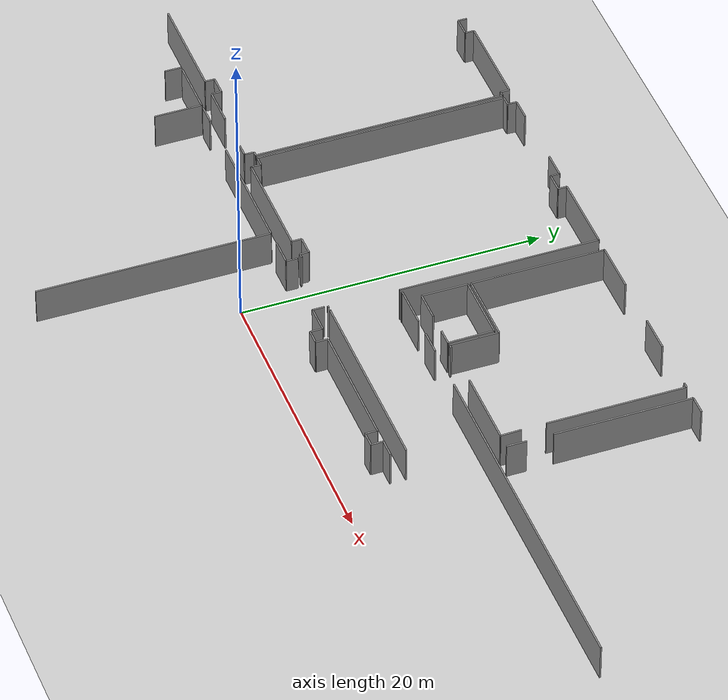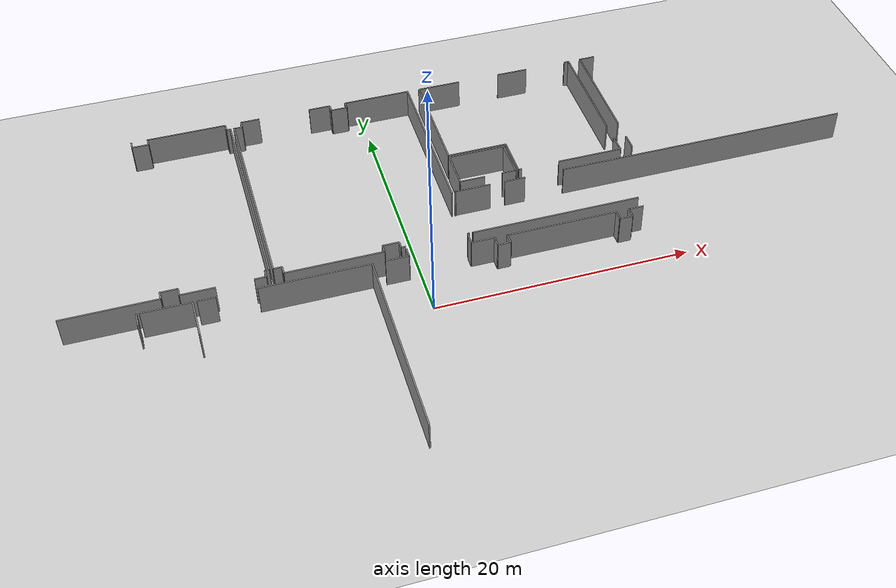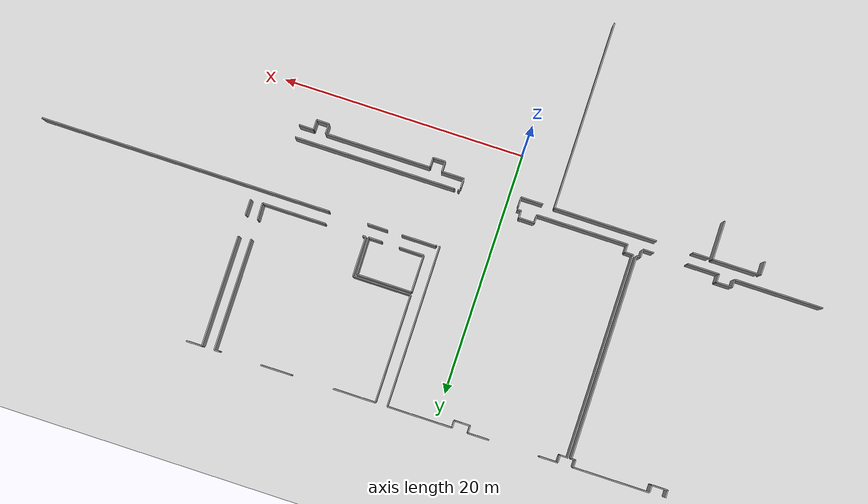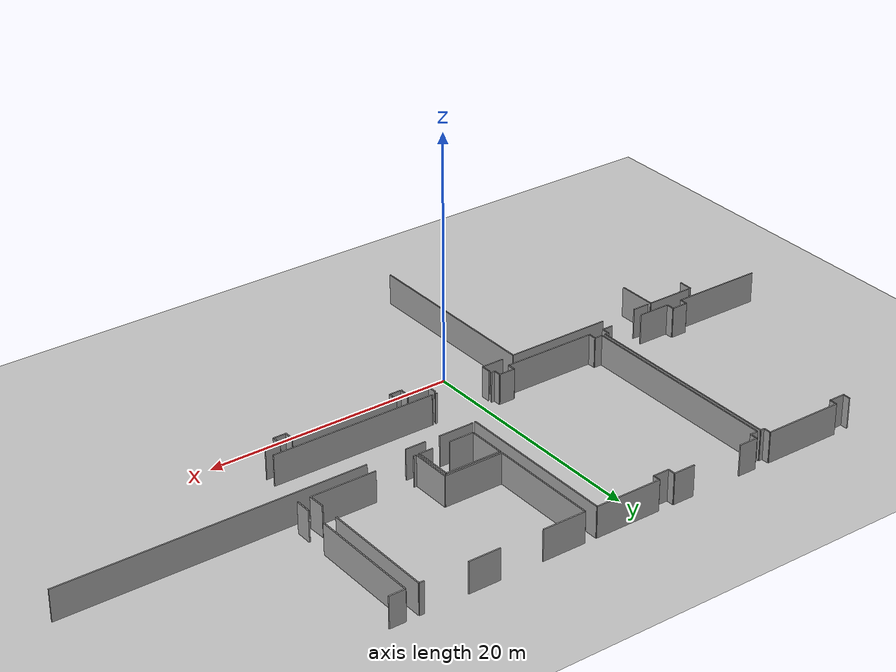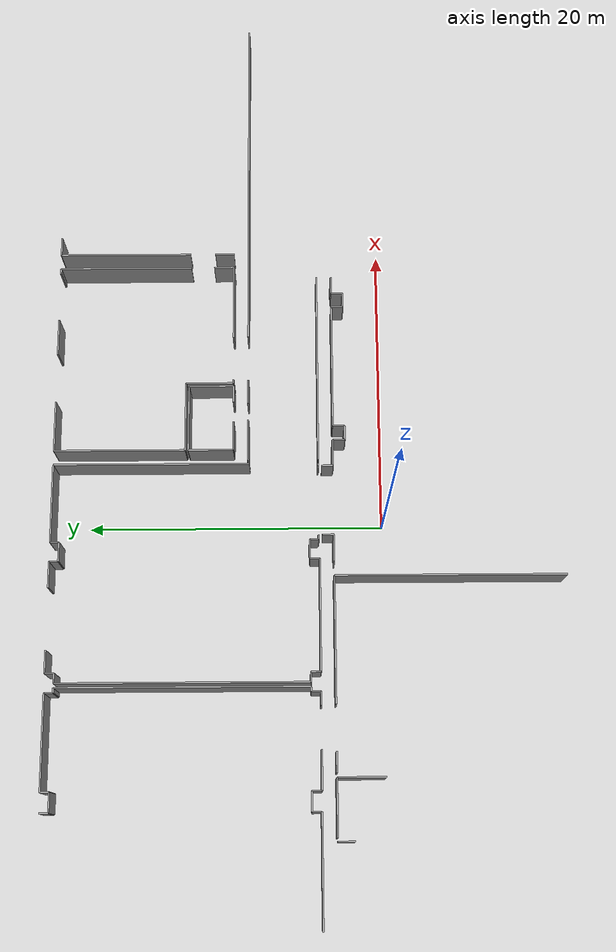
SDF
<sdf version="1.6">
 <world name="default">
  <model name="ground_plane">
   <static>1</static>
   <link name="link">
    <collision name="collision">
     <geometry><plane><normal>0 0 1</normal><size>100 100</size></plane></geometry>
     <surface><friction><ode><mu>100</mu><mu2>50</mu2></ode></friction></surface>
    </collision>
    <visual name="visual">
     <cast_shadows>0</cast_shadows>
     <geometry><plane><normal>0 0 1</normal><size>100 100</size></plane></geometry>
     <material>
      <script><uri>file://media/materials/scripts/gazebo.material</uri><name>Gazebo/Grey</name></script>
     </material>
    </visual>
   </link>
  </model>
  <model name="50010539">
   <static>1</static>
   <link name="Wall_198">
    <collision name="Wall_198_Collision">
     <geometry><box><size>1.11734966083 0.1 2.5</size></box></geometry>
     <pose>0.558674830416 0 1.25 0 0 0</pose>
    </collision>
    <visual name="Wall_198_Visual">
     <pose>0.558674830416 0 1.25 0 0 0</pose>
     <geometry><box><size>1.11734966083 0.1 2.5</size></box></geometry>
     <material>
      <script><uri>file://media/materials/scripts/gazebo.material</uri><name>Gazebo/Grey</name></script>
      <ambient>1 1 1 1</ambient>
     </material>
    </visual>
    <pose>41.9674296893 -19.4582200655 0 0 0 -1.57079632679</pose>
   </link>
   <link name="Wall_203">
    <collision name="Wall_203_Collision">
     <geometry><box><size>3.76286171591 0.1 2.5</size></box></geometry>
     <pose>1.88143085796 0 1.25 0 0 0</pose>
    </collision>
    <visual name="Wall_203_Visual">
     <pose>1.88143085796 0 1.25 0 0 0</pose>
     <geometry><box><size>3.76286171591 0.1 2.5</size></box></geometry>
     <material>
      <script><uri>file://media/materials/scripts/gazebo.material</uri><name>Gazebo/Grey</name></script>
      <ambient>1 1 1 1</ambient>
     </material>
    </visual>
    <pose>42.1846497802 -19.4570768019 0 0 0 0.0</pose>
   </link>
   <link name="Wall_204">
    <collision name="Wall_204_Collision">
     <geometry><box><size>3.18694153477 0.1 2.5</size></box></geometry>
     <pose>1.59347076738 0 1.25 0 0 0</pose>
    </collision>
    <visual name="Wall_204_Visual">
     <pose>1.59347076738 0 1.25 0 0 0</pose>
     <geometry><box><size>3.18694153477 0.1 2.5</size></box></geometry>
     <material>
      <script><uri>file://media/materials/scripts/gazebo.material</uri><name>Gazebo/Grey</name></script>
      <ambient>1 1 1 1</ambient>
     </material>
    </visual>
    <pose>45.9475114962 -19.4570768019 0 0 0 -1.56641178856</pose>
   </link>
   <link name="Wall_210">
    <collision name="Wall_210_Collision">
     <geometry><box><size>0.883107644623 0.1 2.5</size></box></geometry>
     <pose>0.441553822311 0 1.25 0 0 0</pose>
    </collision>
    <visual name="Wall_210_Visual">
     <pose>0.441553822311 0 1.25 0 0 0</pose>
     <geometry><box><size>0.883107644623 0.1 2.5</size></box></geometry>
     <material>
      <script><uri>file://media/materials/scripts/gazebo.material</uri><name>Gazebo/Grey</name></script>
      <ambient>1 1 1 1</ambient>
     </material>
    </visual>
    <pose>51.4280633114 -18.4976245522 0 0 0 3.14159265359</pose>
   </link>
   <link name="Wall_211">
    <collision name="Wall_211_Collision">
     <geometry><box><size>2.60803841366 0.1 2.5</size></box></geometry>
     <pose>1.30401920683 0 1.25 0 0 0</pose>
    </collision>
    <visual name="Wall_211_Visual">
     <pose>1.30401920683 0 1.25 0 0 0</pose>
     <geometry><box><size>2.60803841366 0.1 2.5</size></box></geometry>
     <material>
      <script><uri>file://media/materials/scripts/gazebo.material</uri><name>Gazebo/Grey</name></script>
      <ambient>1 1 1 1</ambient>
     </material>
    </visual>
    <pose>47.7359569117 -18.4976245522 0 0 0 3.14159265359</pose>
   </link>
   <link name="Wall_212">
    <collision name="Wall_212_Collision">
     <geometry><box><size>0.665252407205 0.1 2.5</size></box></geometry>
     <pose>0.332626203603 0 1.25 0 0 0</pose>
    </collision>
    <visual name="Wall_212_Visual">
     <pose>0.332626203603 0 1.25 0 0 0</pose>
     <geometry><box><size>0.665252407205 0.1 2.5</size></box></geometry>
     <material>
      <script><uri>file://media/materials/scripts/gazebo.material</uri><name>Gazebo/Grey</name></script>
      <ambient>1 1 1 1</ambient>
     </material>
    </visual>
    <pose>45.127918498 -18.4976245522 0 0 0 1.57079632679</pose>
   </link>
   <link name="Wall_213">
    <collision name="Wall_213_Collision">
     <geometry><box><size>1.31132339117 0.1 2.5</size></box></geometry>
     <pose>0.655661695587 0 1.25 0 0 0</pose>
    </collision>
    <visual name="Wall_213_Visual">
     <pose>0.655661695587 0 1.25 0 0 0</pose>
     <geometry><box><size>1.31132339117 0.1 2.5</size></box></geometry>
     <material>
      <script><uri>file://media/materials/scripts/gazebo.material</uri><name>Gazebo/Grey</name></script>
      <ambient>1 1 1 1</ambient>
     </material>
    </visual>
    <pose>45.127918498 -17.832372145 0 0 0 3.14159265359</pose>
   </link>
   <link name="Wall_214">
    <collision name="Wall_214_Collision">
     <geometry><box><size>0.643149310231 0.1 2.5</size></box></geometry>
     <pose>0.321574655115 0 1.25 0 0 0</pose>
    </collision>
    <visual name="Wall_214_Visual">
     <pose>0.321574655115 0 1.25 0 0 0</pose>
     <geometry><box><size>0.643149310231 0.1 2.5</size></box></geometry>
     <material>
      <script><uri>file://media/materials/scripts/gazebo.material</uri><name>Gazebo/Grey</name></script>
      <ambient>1 1 1 1</ambient>
     </material>
    </visual>
    <pose>43.8165951068 -17.832372145 0 0 0 -1.57079632679</pose>
   </link>
   <link name="Wall_215">
    <collision name="Wall_215_Collision">
     <geometry><box><size>7.30062752471 0.1 2.5</size></box></geometry>
     <pose>3.65031376235 0 1.25 0 0 0</pose>
    </collision>
    <visual name="Wall_215_Visual">
     <pose>3.65031376235 0 1.25 0 0 0</pose>
     <geometry><box><size>7.30062752471 0.1 2.5</size></box></geometry>
     <material>
      <script><uri>file://media/materials/scripts/gazebo.material</uri><name>Gazebo/Grey</name></script>
      <ambient>1 1 1 1</ambient>
     </material>
    </visual>
    <pose>43.8165951068 -18.4755214552 0 0 0 3.14159265359</pose>
   </link>
   <link name="Wall_247">
    <collision name="Wall_247_Collision">
     <geometry><box><size>0.606183785981 0.1 2.5</size></box></geometry>
     <pose>0.303091892991 0 1.25 0 0 0</pose>
    </collision>
    <visual name="Wall_247_Visual">
     <pose>0.303091892991 0 1.25 0 0 0</pose>
     <geometry><box><size>0.606183785981 0.1 2.5</size></box></geometry>
     <material>
      <script><uri>file://media/materials/scripts/gazebo.material</uri><name>Gazebo/Grey</name></script>
      <ambient>1 1 1 1</ambient>
     </material>
    </visual>
    <pose>43.8141815503 -0.43202662534 0 0 0 -1.57079632679</pose>
   </link>
   <link name="Wall_248">
    <collision name="Wall_248_Collision">
     <geometry><box><size>1.3072584538 0.1 2.5</size></box></geometry>
     <pose>0.6536292269 0 1.25 0 0 0</pose>
    </collision>
    <visual name="Wall_248_Visual">
     <pose>0.6536292269 0 1.25 0 0 0</pose>
     <geometry><box><size>1.3072584538 0.1 2.5</size></box></geometry>
     <material>
      <script><uri>file://media/materials/scripts/gazebo.material</uri><name>Gazebo/Grey</name></script>
      <ambient>1 1 1 1</ambient>
     </material>
    </visual>
    <pose>43.8141815503 -1.03821041132 0 0 0 0.0</pose>
   </link>
   <link name="Wall_249">
    <collision name="Wall_249_Collision">
     <geometry><box><size>0.606183785981 0.1 2.5</size></box></geometry>
     <pose>0.303091892991 0 1.25 0 0 0</pose>
    </collision>
    <visual name="Wall_249_Visual">
     <pose>0.303091892991 0 1.25 0 0 0</pose>
     <geometry><box><size>0.606183785981 0.1 2.5</size></box></geometry>
     <material>
      <script><uri>file://media/materials/scripts/gazebo.material</uri><name>Gazebo/Grey</name></script>
      <ambient>1 1 1 1</ambient>
     </material>
    </visual>
    <pose>45.1214400041 -1.03821041132 0 0 0 1.57079632679</pose>
   </link>
   <link name="Wall_250">
    <collision name="Wall_250_Collision">
     <geometry><box><size>6.29582581743 0.1 2.5</size></box></geometry>
     <pose>3.14791290872 0 1.25 0 0 0</pose>
    </collision>
    <visual name="Wall_250_Visual">
     <pose>3.14791290872 0 1.25 0 0 0</pose>
     <geometry><box><size>6.29582581743 0.1 2.5</size></box></geometry>
     <material>
      <script><uri>file://media/materials/scripts/gazebo.material</uri><name>Gazebo/Grey</name></script>
      <ambient>1 1 1 1</ambient>
     </material>
    </visual>
    <pose>45.1214400041 -0.43202662534 0 0 0 0.0</pose>
   </link>
   <link name="Wall_251">
    <collision name="Wall_251_Collision">
     <geometry><box><size>0.603643200122 0.1 2.5</size></box></geometry>
     <pose>0.301821600061 0 1.25 0 0 0</pose>
    </collision>
    <visual name="Wall_251_Visual">
     <pose>0.301821600061 0 1.25 0 0 0</pose>
     <geometry><box><size>0.603643200122 0.1 2.5</size></box></geometry>
     <material>
      <script><uri>file://media/materials/scripts/gazebo.material</uri><name>Gazebo/Grey</name></script>
      <ambient>1 1 1 1</ambient>
     </material>
    </visual>
    <pose>51.4172658215 -0.43202662534 0 0 0 -1.57079632679</pose>
   </link>
   <link name="Wall_252">
    <collision name="Wall_252_Collision">
     <geometry><box><size>0.334087040472 0.1 2.5</size></box></geometry>
     <pose>0.167043520236 0 1.25 0 0 0</pose>
    </collision>
    <visual name="Wall_252_Visual">
     <pose>0.167043520236 0 1.25 0 0 0</pose>
     <geometry><box><size>0.334087040472 0.1 2.5</size></box></geometry>
     <material>
      <script><uri>file://media/materials/scripts/gazebo.material</uri><name>Gazebo/Grey</name></script>
      <ambient>1 1 1 1</ambient>
     </material>
    </visual>
    <pose>51.4172658215 -1.03566982546 0 0 0 0.0</pose>
   </link>
   <link name="Wall_253">
    <collision name="Wall_253_Collision">
     <geometry><box><size>16.8108025711 0.1 2.5</size></box></geometry>
     <pose>8.40540128554 0 1.25 0 0 0</pose>
    </collision>
    <visual name="Wall_253_Visual">
     <pose>8.40540128554 0 1.25 0 0 0</pose>
     <geometry><box><size>16.8108025711 0.1 2.5</size></box></geometry>
     <material>
      <script><uri>file://media/materials/scripts/gazebo.material</uri><name>Gazebo/Grey</name></script>
      <ambient>1 1 1 1</ambient>
     </material>
    </visual>
    <pose>51.751352862 -1.03566982546 0 0 0 -1.57079632679</pose>
   </link>
   <link name="Wall_254">
    <collision name="Wall_254_Collision">
     <geometry><box><size>0.317446203094 0.1 2.5</size></box></geometry>
     <pose>0.158723101547 0 1.25 0 0 0</pose>
    </collision>
    <visual name="Wall_254_Visual">
     <pose>0.158723101547 0 1.25 0 0 0</pose>
     <geometry><box><size>0.317446203094 0.1 2.5</size></box></geometry>
     <material>
      <script><uri>file://media/materials/scripts/gazebo.material</uri><name>Gazebo/Grey</name></script>
      <ambient>1 1 1 1</ambient>
     </material>
    </visual>
    <pose>51.751352862 -17.8464723965 0 0 0 3.14159265359</pose>
   </link>
   <link name="Wall_255">
    <collision name="Wall_255_Collision">
     <geometry><box><size>0.651178373847 0.1 2.5</size></box></geometry>
     <pose>0.325589186923 0 1.25 0 0 0</pose>
    </collision>
    <visual name="Wall_255_Visual">
     <pose>0.325589186923 0 1.25 0 0 0</pose>
     <geometry><box><size>0.651178373847 0.1 2.5</size></box></geometry>
     <material>
      <script><uri>file://media/materials/scripts/gazebo.material</uri><name>Gazebo/Grey</name></script>
      <ambient>1 1 1 1</ambient>
     </material>
    </visual>
    <pose>51.4339066589 -17.8464723965 0 0 0 -1.57976994468</pose>
   </link>
   <link name="Wall_277">
    <collision name="Wall_277_Collision">
     <geometry><box><size>1.35489443866 0.1 2.5</size></box></geometry>
     <pose>0.677447219329 0 1.25 0 0 0</pose>
    </collision>
    <visual name="Wall_277_Visual">
     <pose>0.677447219329 0 1.25 0 0 0</pose>
     <geometry><box><size>1.35489443866 0.1 2.5</size></box></geometry>
     <material>
      <script><uri>file://media/materials/scripts/gazebo.material</uri><name>Gazebo/Grey</name></script>
      <ambient>1 1 1 1</ambient>
     </material>
    </visual>
    <pose>46.2452681588 -19.4586011534 0 0 0 0.0</pose>
   </link>
   <link name="Wall_278">
    <collision name="Wall_278_Collision">
     <geometry><box><size>8.47234572292 0.1 2.5</size></box></geometry>
     <pose>4.23617286146 0 1.25 0 0 0</pose>
    </collision>
    <visual name="Wall_278_Visual">
     <pose>4.23617286146 0 1.25 0 0 0</pose>
     <geometry><box><size>8.47234572292 0.1 2.5</size></box></geometry>
     <material>
      <script><uri>file://media/materials/scripts/gazebo.material</uri><name>Gazebo/Grey</name></script>
      <ambient>1 1 1 1</ambient>
     </material>
    </visual>
    <pose>50.6106298112 -19.4586011534 0 0 0 0.0</pose>
   </link>
   <link name="Wall_279">
    <collision name="Wall_279_Collision">
     <geometry><box><size>15.5209471304 0.1 2.5</size></box></geometry>
     <pose>7.7604735652 0 1.25 0 0 0</pose>
    </collision>
    <visual name="Wall_279_Visual">
     <pose>7.7604735652 0 1.25 0 0 0</pose>
     <geometry><box><size>15.5209471304 0.1 2.5</size></box></geometry>
     <material>
      <script><uri>file://media/materials/scripts/gazebo.material</uri><name>Gazebo/Grey</name></script>
      <ambient>1 1 1 1</ambient>
     </material>
    </visual>
    <pose>59.0829755342 -19.4586011534 0 0 0 -1.57079632679</pose>
   </link>
   <link name="Wall_300">
    <collision name="Wall_300_Collision">
     <geometry><box><size>1.80051319834 0.1 2.5</size></box></geometry>
     <pose>0.900256599172 0 1.25 0 0 0</pose>
    </collision>
    <visual name="Wall_300_Visual">
     <pose>0.900256599172 0 1.25 0 0 0</pose>
     <geometry><box><size>1.80051319834 0.1 2.5</size></box></geometry>
     <material>
      <script><uri>file://media/materials/scripts/gazebo.material</uri><name>Gazebo/Grey</name></script>
      <ambient>1 1 1 1</ambient>
     </material>
    </visual>
    <pose>60.0550036838 -19.4475496049 0 0 0 0.0</pose>
   </link>
   <link name="Wall_301">
    <collision name="Wall_301_Collision">
     <geometry><box><size>0.773227306217 0.1 2.5</size></box></geometry>
     <pose>0.386613653108 0 1.25 0 0 0</pose>
    </collision>
    <visual name="Wall_301_Visual">
     <pose>0.386613653108 0 1.25 0 0 0</pose>
     <geometry><box><size>0.773227306217 0.1 2.5</size></box></geometry>
     <material>
      <script><uri>file://media/materials/scripts/gazebo.material</uri><name>Gazebo/Grey</name></script>
      <ambient>1 1 1 1</ambient>
     </material>
    </visual>
    <pose>61.8555168822 -19.4475496049 0 0 0 1.57079632679</pose>
   </link>
   <link name="Wall_302">
    <collision name="Wall_302_Collision">
     <geometry><box><size>0.773227306217 0.1 2.5</size></box></geometry>
     <pose>0.386613653108 0 1.25 0 0 0</pose>
    </collision>
    <visual name="Wall_302_Visual">
     <pose>0.386613653108 0 1.25 0 0 0</pose>
     <geometry><box><size>0.773227306217 0.1 2.5</size></box></geometry>
     <material>
      <script><uri>file://media/materials/scripts/gazebo.material</uri><name>Gazebo/Grey</name></script>
      <ambient>1 1 1 1</ambient>
     </material>
    </visual>
    <pose>66.649475369 -18.6743222987 0 0 0 -1.57079632679</pose>
   </link>
   <link name="Wall_303">
    <collision name="Wall_303_Collision">
     <geometry><box><size>1.82071085592 0.1 2.5</size></box></geometry>
     <pose>0.910355427962 0 1.25 0 0 0</pose>
    </collision>
    <visual name="Wall_303_Visual">
     <pose>0.910355427962 0 1.25 0 0 0</pose>
     <geometry><box><size>1.82071085592 0.1 2.5</size></box></geometry>
     <material>
      <script><uri>file://media/materials/scripts/gazebo.material</uri><name>Gazebo/Grey</name></script>
      <ambient>1 1 1 1</ambient>
     </material>
    </visual>
    <pose>66.649475369 -19.4475496049 0 0 0 0.0</pose>
   </link>
   <link name="Wall_304">
    <collision name="Wall_304_Collision">
     <geometry><box><size>0.828103960773 0.1 2.5</size></box></geometry>
     <pose>0.414051980387 0 1.25 0 0 0</pose>
    </collision>
    <visual name="Wall_304_Visual">
     <pose>0.414051980387 0 1.25 0 0 0</pose>
     <geometry><box><size>0.828103960773 0.1 2.5</size></box></geometry>
     <material>
      <script><uri>file://media/materials/scripts/gazebo.material</uri><name>Gazebo/Grey</name></script>
      <ambient>1 1 1 1</ambient>
     </material>
    </visual>
    <pose>68.4701862249 -19.4475496049 0 0 0 -1.57079632679</pose>
   </link>
   <link name="Wall_305">
    <collision name="Wall_305_Collision">
     <geometry><box><size>0.997942125454 0.1 2.5</size></box></geometry>
     <pose>0.498971062727 0 1.25 0 0 0</pose>
    </collision>
    <visual name="Wall_305_Visual">
     <pose>0.498971062727 0 1.25 0 0 0</pose>
     <geometry><box><size>0.997942125454 0.1 2.5</size></box></geometry>
     <material>
      <script><uri>file://media/materials/scripts/gazebo.material</uri><name>Gazebo/Grey</name></script>
      <ambient>1 1 1 1</ambient>
     </material>
    </visual>
    <pose>68.4701862249 -20.2756535657 0 0 0 0.0</pose>
   </link>
   <link name="Wall_306">
    <collision name="Wall_306_Collision">
     <geometry><box><size>0.808414420365 0.1 2.5</size></box></geometry>
     <pose>0.404207210183 0 1.25 0 0 0</pose>
    </collision>
    <visual name="Wall_306_Visual">
     <pose>0.404207210183 0 1.25 0 0 0</pose>
     <geometry><box><size>0.808414420365 0.1 2.5</size></box></geometry>
     <material>
      <script><uri>file://media/materials/scripts/gazebo.material</uri><name>Gazebo/Grey</name></script>
      <ambient>1 1 1 1</ambient>
     </material>
    </visual>
    <pose>69.4681283504 -20.2756535657 0 0 0 1.57079632679</pose>
   </link>
   <link name="Wall_307">
    <collision name="Wall_307_Collision">
     <geometry><box><size>8.701760626 0.1 2.5</size></box></geometry>
     <pose>4.350880313 0 1.25 0 0 0</pose>
    </collision>
    <visual name="Wall_307_Visual">
     <pose>4.350880313 0 1.25 0 0 0</pose>
     <geometry><box><size>8.701760626 0.1 2.5</size></box></geometry>
     <material>
      <script><uri>file://media/materials/scripts/gazebo.material</uri><name>Gazebo/Grey</name></script>
      <ambient>1 1 1 1</ambient>
     </material>
    </visual>
    <pose>69.4681283504 -19.4672391453 0 0 0 0.0</pose>
   </link>
   <link name="Wall_308">
    <collision name="Wall_308_Collision">
     <geometry><box><size>0.801554838546 0.1 2.5</size></box></geometry>
     <pose>0.400777419273 0 1.25 0 0 0</pose>
    </collision>
    <visual name="Wall_308_Visual">
     <pose>0.400777419273 0 1.25 0 0 0</pose>
     <geometry><box><size>0.801554838546 0.1 2.5</size></box></geometry>
     <material>
      <script><uri>file://media/materials/scripts/gazebo.material</uri><name>Gazebo/Grey</name></script>
      <ambient>1 1 1 1</ambient>
     </material>
    </visual>
    <pose>78.1698889764 -19.4672391453 0 0 0 -1.57079632679</pose>
   </link>
   <link name="Wall_309">
    <collision name="Wall_309_Collision">
     <geometry><box><size>1.01674246081 0.1 2.5</size></box></geometry>
     <pose>0.508371230406 0 1.25 0 0 0</pose>
    </collision>
    <visual name="Wall_309_Visual">
     <pose>0.508371230406 0 1.25 0 0 0</pose>
     <geometry><box><size>1.01674246081 0.1 2.5</size></box></geometry>
     <material>
      <script><uri>file://media/materials/scripts/gazebo.material</uri><name>Gazebo/Grey</name></script>
      <ambient>1 1 1 1</ambient>
     </material>
    </visual>
    <pose>78.1698889764 -20.2687939839 0 0 0 0.0</pose>
   </link>
   <link name="Wall_310">
    <collision name="Wall_310_Collision">
     <geometry><box><size>0.805492746627 0.1 2.5</size></box></geometry>
     <pose>0.402746373314 0 1.25 0 0 0</pose>
    </collision>
    <visual name="Wall_310_Visual">
     <pose>0.402746373314 0 1.25 0 0 0</pose>
     <geometry><box><size>0.805492746627 0.1 2.5</size></box></geometry>
     <material>
      <script><uri>file://media/materials/scripts/gazebo.material</uri><name>Gazebo/Grey</name></script>
      <ambient>1 1 1 1</ambient>
     </material>
    </visual>
    <pose>79.1866314372 -20.2687939839 0 0 0 1.57079632679</pose>
   </link>
   <link name="Wall_311">
    <collision name="Wall_311_Collision">
     <geometry><box><size>1.19013744569 0.1 2.5</size></box></geometry>
     <pose>0.595068722847 0 1.25 0 0 0</pose>
    </collision>
    <visual name="Wall_311_Visual">
     <pose>0.595068722847 0 1.25 0 0 0</pose>
     <geometry><box><size>1.19013744569 0.1 2.5</size></box></geometry>
     <material>
      <script><uri>file://media/materials/scripts/gazebo.material</uri><name>Gazebo/Grey</name></script>
      <ambient>1 1 1 1</ambient>
     </material>
    </visual>
    <pose>79.1866314372 -19.4633012373 0 0 0 0.0</pose>
   </link>
   <link name="Wall_392">
    <collision name="Wall_392_Collision">
     <geometry><box><size>13.3021264704 0.1 2.5</size></box></geometry>
     <pose>6.65106323518 0 1.25 0 0 0</pose>
    </collision>
    <visual name="Wall_392_Visual">
     <pose>6.65106323518 0 1.25 0 0 0</pose>
     <geometry><box><size>13.3021264704 0.1 2.5</size></box></geometry>
     <material>
      <script><uri>file://media/materials/scripts/gazebo.material</uri><name>Gazebo/Grey</name></script>
      <ambient>1 1 1 1</ambient>
     </material>
    </visual>
    <pose>80.3798175859 -18.4435100734 0 0 0 3.14159265359</pose>
   </link>
   <link name="Wall_393">
    <collision name="Wall_393_Collision">
     <geometry><box><size>0.0520820101115 0.1 2.5</size></box></geometry>
     <pose>0.0260410050558 0 1.25 0 0 0</pose>
    </collision>
    <visual name="Wall_393_Visual">
     <pose>0.0260410050558 0 1.25 0 0 0</pose>
     <geometry><box><size>0.0520820101115 0.1 2.5</size></box></geometry>
     <material>
      <script><uri>file://media/materials/scripts/gazebo.material</uri><name>Gazebo/Grey</name></script>
      <ambient>1 1 1 1</ambient>
     </material>
    </visual>
    <pose>67.0776911156 -18.4435100734 0 0 0 1.57079632679</pose>
   </link>
   <link name="Wall_394">
    <collision name="Wall_394_Collision">
     <geometry><box><size>0.0894286222403 0.1 2.5</size></box></geometry>
     <pose>0.0447143111201 0 1.25 0 0 0</pose>
    </collision>
    <visual name="Wall_394_Visual">
     <pose>0.0447143111201 0 1.25 0 0 0</pose>
     <geometry><box><size>0.0894286222403 0.1 2.5</size></box></geometry>
     <material>
      <script><uri>file://media/materials/scripts/gazebo.material</uri><name>Gazebo/Grey</name></script>
      <ambient>1 1 1 1</ambient>
     </material>
    </visual>
    <pose>67.0776911156 -13.7589238078 0 0 0 1.57079632679</pose>
   </link>
   <link name="Wall_395">
    <collision name="Wall_395_Collision">
     <geometry><box><size>2.83885063896 0.1 2.5</size></box></geometry>
     <pose>1.41942531948 0 1.25 0 0 0</pose>
    </collision>
    <visual name="Wall_395_Visual">
     <pose>1.41942531948 0 1.25 0 0 0</pose>
     <geometry><box><size>2.83885063896 0.1 2.5</size></box></geometry>
     <material>
      <script><uri>file://media/materials/scripts/gazebo.material</uri><name>Gazebo/Grey</name></script>
      <ambient>1 1 1 1</ambient>
     </material>
    </visual>
    <pose>67.0776911156 -13.6694951856 0 0 0 0.0</pose>
   </link>
   <link name="Wall_396">
    <collision name="Wall_396_Collision">
     <geometry><box><size>1.64845913468 0.1 2.5</size></box></geometry>
     <pose>0.824229567338 0 1.25 0 0 0</pose>
    </collision>
    <visual name="Wall_396_Visual">
     <pose>0.824229567338 0 1.25 0 0 0</pose>
     <geometry><box><size>1.64845913468 0.1 2.5</size></box></geometry>
     <material>
      <script><uri>file://media/materials/scripts/gazebo.material</uri><name>Gazebo/Grey</name></script>
      <ambient>1 1 1 1</ambient>
     </material>
    </visual>
    <pose>71.1290363558 -13.6694951856 0 0 0 0.0</pose>
   </link>
   <link name="Wall_397">
    <collision name="Wall_397_Collision">
     <geometry><box><size>23.9883387109 0.1 2.5</size></box></geometry>
     <pose>11.9941693555 0 1.25 0 0 0</pose>
    </collision>
    <visual name="Wall_397_Visual">
     <pose>11.9941693555 0 1.25 0 0 0</pose>
     <geometry><box><size>23.9883387109 0.1 2.5</size></box></geometry>
     <material>
      <script><uri>file://media/materials/scripts/gazebo.material</uri><name>Gazebo/Grey</name></script>
      <ambient>1 1 1 1</ambient>
     </material>
    </visual>
    <pose>75.9649145093 -13.6694951856 0 0 0 0.0</pose>
   </link>
   <link name="Wall_401">
    <collision name="Wall_401_Collision">
     <geometry><box><size>1.32377226188 0.1 2.5</size></box></geometry>
     <pose>0.661886130942 0 1.25 0 0 0</pose>
    </collision>
    <visual name="Wall_401_Visual">
     <pose>0.661886130942 0 1.25 0 0 0</pose>
     <geometry><box><size>1.32377226188 0.1 2.5</size></box></geometry>
     <material>
      <script><uri>file://media/materials/scripts/gazebo.material</uri><name>Gazebo/Grey</name></script>
      <ambient>1 1 1 1</ambient>
     </material>
    </visual>
    <pose>82.1790604913 -12.6579609258 0 0 0 1.57079632679</pose>
   </link>
   <link name="Wall_402">
    <collision name="Wall_402_Collision">
     <geometry><box><size>9.14801453215 0.1 2.5</size></box></geometry>
     <pose>4.57400726608 0 1.25 0 0 0</pose>
    </collision>
    <visual name="Wall_402_Visual">
     <pose>4.57400726608 0 1.25 0 0 0</pose>
     <geometry><box><size>9.14801453215 0.1 2.5</size></box></geometry>
     <material>
      <script><uri>file://media/materials/scripts/gazebo.material</uri><name>Gazebo/Grey</name></script>
      <ambient>1 1 1 1</ambient>
     </material>
    </visual>
    <pose>82.1790604913 -9.5834709484 0 0 0 1.57079632679</pose>
   </link>
   <link name="Wall_403">
    <collision name="Wall_403_Collision">
     <geometry><box><size>1.29607987602 0.1 2.5</size></box></geometry>
     <pose>0.64803993801 0 1.25 0 0 0</pose>
    </collision>
    <visual name="Wall_403_Visual">
     <pose>0.64803993801 0 1.25 0 0 0</pose>
     <geometry><box><size>1.29607987602 0.1 2.5</size></box></geometry>
     <material>
      <script><uri>file://media/materials/scripts/gazebo.material</uri><name>Gazebo/Grey</name></script>
      <ambient>1 1 1 1</ambient>
     </material>
    </visual>
    <pose>82.1790604913 -0.43545641625 0 0 0 0.0</pose>
   </link>
   <link name="Wall_406">
    <collision name="Wall_406_Collision">
     <geometry><box><size>5.24440435965 0.1 2.5</size></box></geometry>
     <pose>2.62220217982 0 1.25 0 0 0</pose>
    </collision>
    <visual name="Wall_406_Visual">
     <pose>2.62220217982 0 1.25 0 0 0</pose>
     <geometry><box><size>5.24440435965 0.1 2.5</size></box></geometry>
     <material>
      <script><uri>file://media/materials/scripts/gazebo.material</uri><name>Gazebo/Grey</name></script>
      <ambient>1 1 1 1</ambient>
     </material>
    </visual>
    <pose>81.1884860649 -12.6480526409 0 0 0 3.14159265359</pose>
   </link>
   <link name="Wall_407">
    <collision name="Wall_407_Collision">
     <geometry><box><size>0.259266786921 0.1 2.5</size></box></geometry>
     <pose>0.129633393461 0 1.25 0 0 0</pose>
    </collision>
    <visual name="Wall_407_Visual">
     <pose>0.129633393461 0 1.25 0 0 0</pose>
     <geometry><box><size>0.259266786921 0.1 2.5</size></box></geometry>
     <material>
      <script><uri>file://media/materials/scripts/gazebo.material</uri><name>Gazebo/Grey</name></script>
      <ambient>1 1 1 1</ambient>
     </material>
    </visual>
    <pose>72.8415182541 -12.6480526409 0 0 0 3.14159265359</pose>
   </link>
   <link name="Wall_408">
    <collision name="Wall_408_Collision">
     <geometry><box><size>3.25614186631 0.1 2.5</size></box></geometry>
     <pose>1.62807093316 0 1.25 0 0 0</pose>
    </collision>
    <visual name="Wall_408_Visual">
     <pose>1.62807093316 0 1.25 0 0 0</pose>
     <geometry><box><size>3.25614186631 0.1 2.5</size></box></geometry>
     <material>
      <script><uri>file://media/materials/scripts/gazebo.material</uri><name>Gazebo/Grey</name></script>
      <ambient>1 1 1 1</ambient>
     </material>
    </visual>
    <pose>72.5822514672 -12.6480526409 0 0 0 1.57079632679</pose>
   </link>
   <link name="Wall_409">
    <collision name="Wall_409_Collision">
     <geometry><box><size>4.79306928178 0.1 2.5</size></box></geometry>
     <pose>2.39653464089 0 1.25 0 0 0</pose>
    </collision>
    <visual name="Wall_409_Visual">
     <pose>2.39653464089 0 1.25 0 0 0</pose>
     <geometry><box><size>4.79306928178 0.1 2.5</size></box></geometry>
     <material>
      <script><uri>file://media/materials/scripts/gazebo.material</uri><name>Gazebo/Grey</name></script>
      <ambient>1 1 1 1</ambient>
     </material>
    </visual>
    <pose>72.5822514672 -9.39191077462 0 0 0 3.14159265359</pose>
   </link>
   <link name="Wall_410">
    <collision name="Wall_410_Collision">
     <geometry><box><size>8.94082975534 0.1 2.5</size></box></geometry>
     <pose>4.47041487767 0 1.25 0 0 0</pose>
    </collision>
    <visual name="Wall_410_Visual">
     <pose>4.47041487767 0 1.25 0 0 0</pose>
     <geometry><box><size>8.94082975534 0.1 2.5</size></box></geometry>
     <material>
      <script><uri>file://media/materials/scripts/gazebo.material</uri><name>Gazebo/Grey</name></script>
      <ambient>1 1 1 1</ambient>
     </material>
    </visual>
    <pose>67.7891821854 -9.39191077462 0 0 0 1.57079632679</pose>
   </link>
   <link name="Wall_411">
    <collision name="Wall_411_Collision">
     <geometry><box><size>3.49838672798 0.1 2.5</size></box></geometry>
     <pose>1.74919336399 0 1.25 0 0 0</pose>
    </collision>
    <visual name="Wall_411_Visual">
     <pose>1.74919336399 0 1.25 0 0 0</pose>
     <geometry><box><size>3.49838672798 0.1 2.5</size></box></geometry>
     <material>
      <script><uri>file://media/materials/scripts/gazebo.material</uri><name>Gazebo/Grey</name></script>
      <ambient>1 1 1 1</ambient>
     </material>
    </visual>
    <pose>67.7891821854 -0.451081019283 0 0 0 0.0</pose>
   </link>
   <link name="Wall_412">
    <collision name="Wall_412_Collision">
     <geometry><box><size>2.54820761668 0.1 2.5</size></box></geometry>
     <pose>1.27410380834 0 1.25 0 0 0</pose>
    </collision>
    <visual name="Wall_412_Visual">
     <pose>1.27410380834 0 1.25 0 0 0</pose>
     <geometry><box><size>2.54820761668 0.1 2.5</size></box></geometry>
     <material>
      <script><uri>file://media/materials/scripts/gazebo.material</uri><name>Gazebo/Grey</name></script>
      <ambient>1 1 1 1</ambient>
     </material>
    </visual>
    <pose>74.7451792383 -0.451081019283 0 0 0 0.0</pose>
   </link>
   <link name="Wall_413">
    <collision name="Wall_413_Collision">
     <geometry><box><size>0.394552983918 0.1 2.5</size></box></geometry>
     <pose>0.197276491959 0 1.25 0 0 0</pose>
    </collision>
    <visual name="Wall_413_Visual">
     <pose>0.197276491959 0 1.25 0 0 0</pose>
     <geometry><box><size>0.394552983918 0.1 2.5</size></box></geometry>
     <material>
      <script><uri>file://media/materials/scripts/gazebo.material</uri><name>Gazebo/Grey</name></script>
      <ambient>1 1 1 1</ambient>
     </material>
    </visual>
    <pose>80.7521404436 -0.451081019283 0 0 0 0.0</pose>
   </link>
   <link name="Wall_414">
    <collision name="Wall_414_Collision">
     <geometry><box><size>9.20975076853 0.1 2.5</size></box></geometry>
     <pose>4.60487538426 0 1.25 0 0 0</pose>
    </collision>
    <visual name="Wall_414_Visual">
     <pose>4.60487538426 0 1.25 0 0 0</pose>
     <geometry><box><size>9.20975076853 0.1 2.5</size></box></geometry>
     <material>
      <script><uri>file://media/materials/scripts/gazebo.material</uri><name>Gazebo/Grey</name></script>
      <ambient>1 1 1 1</ambient>
     </material>
    </visual>
    <pose>81.1466934275 -0.451081019283 0 0 0 -1.57079632679</pose>
   </link>
   <link name="Wall_415">
    <collision name="Wall_415_Collision">
     <geometry><box><size>1.3861386739 0.1 2.5</size></box></geometry>
     <pose>0.693069336951 0 1.25 0 0 0</pose>
    </collision>
    <visual name="Wall_415_Visual">
     <pose>0.693069336951 0 1.25 0 0 0</pose>
     <geometry><box><size>1.3861386739 0.1 2.5</size></box></geometry>
     <material>
      <script><uri>file://media/materials/scripts/gazebo.material</uri><name>Gazebo/Grey</name></script>
      <ambient>1 1 1 1</ambient>
     </material>
    </visual>
    <pose>81.1466934275 -11.2625441427 0 0 0 -1.54064135553</pose>
   </link>
   <link name="Wall_416">
    <collision name="Wall_416_Collision">
     <geometry><box><size>1.1358959376 0.1 2.5</size></box></geometry>
     <pose>0.567947968802 0 1.25 0 0 0</pose>
    </collision>
    <visual name="Wall_416_Visual">
     <pose>0.567947968802 0 1.25 0 0 0</pose>
     <geometry><box><size>1.1358959376 0.1 2.5</size></box></geometry>
     <material>
      <script><uri>file://media/materials/scripts/gazebo.material</uri><name>Gazebo/Grey</name></script>
      <ambient>1 1 1 1</ambient>
     </material>
    </visual>
    <pose>72.3650313762 -12.6705368258 0 0 0 3.14159265359</pose>
   </link>
   <link name="Wall_417">
    <collision name="Wall_417_Collision">
     <geometry><box><size>2.02637128122 0.1 2.5</size></box></geometry>
     <pose>1.01318564061 0 1.25 0 0 0</pose>
    </collision>
    <visual name="Wall_417_Visual">
     <pose>1.01318564061 0 1.25 0 0 0</pose>
     <geometry><box><size>2.02637128122 0.1 2.5</size></box></geometry>
     <material>
      <script><uri>file://media/materials/scripts/gazebo.material</uri><name>Gazebo/Grey</name></script>
      <ambient>1 1 1 1</ambient>
     </material>
    </visual>
    <pose>69.8136480272 -12.6705368258 0 0 0 3.14159265359</pose>
   </link>
   <link name="Wall_418">
    <collision name="Wall_418_Collision">
     <geometry><box><size>3.06496278042 0.1 2.5</size></box></geometry>
     <pose>1.53248139021 0 1.25 0 0 0</pose>
    </collision>
    <visual name="Wall_418_Visual">
     <pose>1.53248139021 0 1.25 0 0 0</pose>
     <geometry><box><size>3.06496278042 0.1 2.5</size></box></geometry>
     <material>
      <script><uri>file://media/materials/scripts/gazebo.material</uri><name>Gazebo/Grey</name></script>
      <ambient>1 1 1 1</ambient>
     </material>
    </visual>
    <pose>67.787276746 -12.6705368258 0 0 0 1.57079632679</pose>
   </link>
   <link name="Wall_419">
    <collision name="Wall_419_Collision">
     <geometry><box><size>4.53989990092 0.1 2.5</size></box></geometry>
     <pose>2.26994995046 0 1.25 0 0 0</pose>
    </collision>
    <visual name="Wall_419_Visual">
     <pose>2.26994995046 0 1.25 0 0 0</pose>
     <geometry><box><size>4.53989990092 0.1 2.5</size></box></geometry>
     <material>
      <script><uri>file://media/materials/scripts/gazebo.material</uri><name>Gazebo/Grey</name></script>
      <ambient>1 1 1 1</ambient>
     </material>
    </visual>
    <pose>67.787276746 -9.60557404537 0 0 0 0.0</pose>
   </link>
   <link name="Wall_420">
    <collision name="Wall_420_Collision">
     <geometry><box><size>3.06519653952 0.1 2.5</size></box></geometry>
     <pose>1.53259826976 0 1.25 0 0 0</pose>
    </collision>
    <visual name="Wall_420_Visual">
     <pose>1.53259826976 0 1.25 0 0 0</pose>
     <geometry><box><size>3.06519653952 0.1 2.5</size></box></geometry>
     <material>
      <script><uri>file://media/materials/scripts/gazebo.material</uri><name>Gazebo/Grey</name></script>
      <ambient>1 1 1 1</ambient>
     </material>
    </visual>
    <pose>72.3271766469 -9.60557404537 0 0 0 -1.55844615899</pose>
   </link>
   <link name="Wall_421">
    <collision name="Wall_421_Collision">
     <geometry><box><size>13.3220700694 0.1 2.5</size></box></geometry>
     <pose>6.66103503468 0 1.25 0 0 0</pose>
    </collision>
    <visual name="Wall_421_Visual">
     <pose>6.66103503468 0 1.25 0 0 0</pose>
     <geometry><box><size>13.3220700694 0.1 2.5</size></box></geometry>
     <material>
      <script><uri>file://media/materials/scripts/gazebo.material</uri><name>Gazebo/Grey</name></script>
      <ambient>1 1 1 1</ambient>
     </material>
    </visual>
    <pose>66.8030537842 -13.7647671553 0 0 0 1.57079632679</pose>
   </link>
   <link name="Wall_422">
    <collision name="Wall_422_Collision">
     <geometry><box><size>5.37130662331 0.1 2.5</size></box></geometry>
     <pose>2.68565331165 0 1.25 0 0 0</pose>
    </collision>
    <visual name="Wall_422_Visual">
     <pose>2.68565331165 0 1.25 0 0 0</pose>
     <geometry><box><size>5.37130662331 0.1 2.5</size></box></geometry>
     <material>
      <script><uri>file://media/materials/scripts/gazebo.material</uri><name>Gazebo/Grey</name></script>
      <ambient>1 1 1 1</ambient>
     </material>
    </visual>
    <pose>66.8030537842 -0.442697085948 0 0 0 3.14159265359</pose>
   </link>
   <link name="Wall_423">
    <collision name="Wall_423_Collision">
     <geometry><box><size>0.592972739514 0.1 2.5</size></box></geometry>
     <pose>0.296486369757 0 1.25 0 0 0</pose>
    </collision>
    <visual name="Wall_423_Visual">
     <pose>0.296486369757 0 1.25 0 0 0</pose>
     <geometry><box><size>0.592972739514 0.1 2.5</size></box></geometry>
     <material>
      <script><uri>file://media/materials/scripts/gazebo.material</uri><name>Gazebo/Grey</name></script>
      <ambient>1 1 1 1</ambient>
     </material>
    </visual>
    <pose>61.4317471609 -0.442697085948 0 0 0 -1.57079632679</pose>
   </link>
   <link name="Wall_424">
    <collision name="Wall_424_Collision">
     <geometry><box><size>1.31132339117 0.1 2.5</size></box></geometry>
     <pose>0.655661695587 0 1.25 0 0 0</pose>
    </collision>
    <visual name="Wall_424_Visual">
     <pose>0.655661695587 0 1.25 0 0 0</pose>
     <geometry><box><size>1.31132339117 0.1 2.5</size></box></geometry>
     <material>
      <script><uri>file://media/materials/scripts/gazebo.material</uri><name>Gazebo/Grey</name></script>
      <ambient>1 1 1 1</ambient>
     </material>
    </visual>
    <pose>61.4317471609 -1.03566982546 0 0 0 3.14159265359</pose>
   </link>
   <link name="Wall_425">
    <collision name="Wall_425_Collision">
     <geometry><box><size>0.609613576891 0.1 2.5</size></box></geometry>
     <pose>0.304806788445 0 1.25 0 0 0</pose>
    </collision>
    <visual name="Wall_425_Visual">
     <pose>0.304806788445 0 1.25 0 0 0</pose>
     <geometry><box><size>0.609613576891 0.1 2.5</size></box></geometry>
     <material>
      <script><uri>file://media/materials/scripts/gazebo.material</uri><name>Gazebo/Grey</name></script>
      <ambient>1 1 1 1</ambient>
     </material>
    </visual>
    <pose>60.1204237697 -1.03566982546 0 0 0 1.57079632679</pose>
   </link>
   <link name="Wall_426">
    <collision name="Wall_426_Collision">
     <geometry><box><size>1.75516374076 0.1 2.5</size></box></geometry>
     <pose>0.877581870379 0 1.25 0 0 0</pose>
    </collision>
    <visual name="Wall_426_Visual">
     <pose>0.877581870379 0 1.25 0 0 0</pose>
     <geometry><box><size>1.75516374076 0.1 2.5</size></box></geometry>
     <material>
      <script><uri>file://media/materials/scripts/gazebo.material</uri><name>Gazebo/Grey</name></script>
      <ambient>1 1 1 1</ambient>
     </material>
    </visual>
    <pose>60.1204237697 -0.426056248571 0 0 0 3.14159265359</pose>
   </link>
   <link name="Wall_427">
    <collision name="Wall_427_Collision">
     <geometry><box><size>1.50936205889 0.1 2.5</size></box></geometry>
     <pose>0.754681029445 0 1.25 0 0 0</pose>
    </collision>
    <visual name="Wall_427_Visual">
     <pose>0.754681029445 0 1.25 0 0 0</pose>
     <geometry><box><size>1.50936205889 0.1 2.5</size></box></geometry>
     <material>
      <script><uri>file://media/materials/scripts/gazebo.material</uri><name>Gazebo/Grey</name></script>
      <ambient>1 1 1 1</ambient>
     </material>
    </visual>
    <pose>54.2032722746 -0.426056248571 0 0 0 3.14159265359</pose>
   </link>
   <link name="Wall_428">
    <collision name="Wall_428_Collision">
     <geometry><box><size>0.61215416275 0.1 2.5</size></box></geometry>
     <pose>0.306077081375 0 1.25 0 0 0</pose>
    </collision>
    <visual name="Wall_428_Visual">
     <pose>0.306077081375 0 1.25 0 0 0</pose>
     <geometry><box><size>0.61215416275 0.1 2.5</size></box></geometry>
     <material>
      <script><uri>file://media/materials/scripts/gazebo.material</uri><name>Gazebo/Grey</name></script>
      <ambient>1 1 1 1</ambient>
     </material>
    </visual>
    <pose>52.6939102157 -0.426056248571 0 0 0 -1.57079632679</pose>
   </link>
   <link name="Wall_429">
    <collision name="Wall_429_Collision">
     <geometry><box><size>0.65686847387 0.1 2.5</size></box></geometry>
     <pose>0.328434236935 0 1.25 0 0 0</pose>
    </collision>
    <visual name="Wall_429_Visual">
     <pose>0.328434236935 0 1.25 0 0 0</pose>
     <geometry><box><size>0.65686847387 0.1 2.5</size></box></geometry>
     <material>
      <script><uri>file://media/materials/scripts/gazebo.material</uri><name>Gazebo/Grey</name></script>
      <ambient>1 1 1 1</ambient>
     </material>
    </visual>
    <pose>52.6939102157 -1.03821041132 0 0 0 3.14159265359</pose>
   </link>
   <link name="Wall_430">
    <collision name="Wall_430_Collision">
     <geometry><box><size>16.8062295165 0.1 2.5</size></box></geometry>
     <pose>8.40311475826 0 1.25 0 0 0</pose>
    </collision>
    <visual name="Wall_430_Visual">
     <pose>8.40311475826 0 1.25 0 0 0</pose>
     <geometry><box><size>16.8062295165 0.1 2.5</size></box></geometry>
     <material>
      <script><uri>file://media/materials/scripts/gazebo.material</uri><name>Gazebo/Grey</name></script>
      <ambient>1 1 1 1</ambient>
     </material>
    </visual>
    <pose>52.0370417418 -1.03821041132 0 0 0 -1.57079632679</pose>
   </link>
   <link name="Wall_431">
    <collision name="Wall_431_Collision">
     <geometry><box><size>0.671857930439 0.1 2.5</size></box></geometry>
     <pose>0.335928965219 0 1.25 0 0 0</pose>
    </collision>
    <visual name="Wall_431_Visual">
     <pose>0.335928965219 0 1.25 0 0 0</pose>
     <geometry><box><size>0.671857930439 0.1 2.5</size></box></geometry>
     <material>
      <script><uri>file://media/materials/scripts/gazebo.material</uri><name>Gazebo/Grey</name></script>
      <ambient>1 1 1 1</ambient>
     </material>
    </visual>
    <pose>52.0370417418 -17.8444399278 0 0 0 0.0</pose>
   </link>
   <link name="Wall_432">
    <collision name="Wall_432_Collision">
     <geometry><box><size>0.653184624374 0.1 2.5</size></box></geometry>
     <pose>0.326592312187 0 1.25 0 0 0</pose>
    </collision>
    <visual name="Wall_432_Visual">
     <pose>0.326592312187 0 1.25 0 0 0</pose>
     <geometry><box><size>0.653184624374 0.1 2.5</size></box></geometry>
     <material>
      <script><uri>file://media/materials/scripts/gazebo.material</uri><name>Gazebo/Grey</name></script>
      <ambient>1 1 1 1</ambient>
     </material>
    </visual>
    <pose>52.7088996723 -17.8444399278 0 0 0 -1.57079632679</pose>
   </link>
   <link name="Wall_433">
    <collision name="Wall_433_Collision">
     <geometry><box><size>7.53766418536 0.1 2.5</size></box></geometry>
     <pose>3.76883209268 0 1.25 0 0 0</pose>
    </collision>
    <visual name="Wall_433_Visual">
     <pose>3.76883209268 0 1.25 0 0 0</pose>
     <geometry><box><size>7.53766418536 0.1 2.5</size></box></geometry>
     <material>
      <script><uri>file://media/materials/scripts/gazebo.material</uri><name>Gazebo/Grey</name></script>
      <ambient>1 1 1 1</ambient>
     </material>
    </visual>
    <pose>52.7088996723 -18.4976245522 0 0 0 0.0</pose>
   </link>
   <link name="Wall_434">
    <collision name="Wall_434_Collision">
     <geometry><box><size>0.662203704174 0.1 2.5</size></box></geometry>
     <pose>0.331101852087 0 1.25 0 0 0</pose>
    </collision>
    <visual name="Wall_434_Visual">
     <pose>0.331101852087 0 1.25 0 0 0</pose>
     <geometry><box><size>0.662203704174 0.1 2.5</size></box></geometry>
     <material>
      <script><uri>file://media/materials/scripts/gazebo.material</uri><name>Gazebo/Grey</name></script>
      <ambient>1 1 1 1</ambient>
     </material>
    </visual>
    <pose>60.2465638576 -18.4976245522 0 0 0 1.57079632679</pose>
   </link>
   <link name="Wall_435">
    <collision name="Wall_435_Collision">
     <geometry><box><size>1.29150682147 0.1 2.5</size></box></geometry>
     <pose>0.645753410737 0 1.25 0 0 0</pose>
    </collision>
    <visual name="Wall_435_Visual">
     <pose>0.645753410737 0 1.25 0 0 0</pose>
     <geometry><box><size>1.29150682147 0.1 2.5</size></box></geometry>
     <material>
      <script><uri>file://media/materials/scripts/gazebo.material</uri><name>Gazebo/Grey</name></script>
      <ambient>1 1 1 1</ambient>
     </material>
    </visual>
    <pose>60.2465638576 -17.835420848 0 0 0 0.0</pose>
   </link>
   <link name="Wall_436">
    <collision name="Wall_436_Collision">
     <geometry><box><size>0.589669977897 0.1 2.5</size></box></geometry>
     <pose>0.294834988948 0 1.25 0 0 0</pose>
    </collision>
    <visual name="Wall_436_Visual">
     <pose>0.294834988948 0 1.25 0 0 0</pose>
     <geometry><box><size>0.589669977897 0.1 2.5</size></box></geometry>
     <material>
      <script><uri>file://media/materials/scripts/gazebo.material</uri><name>Gazebo/Grey</name></script>
      <ambient>1 1 1 1</ambient>
     </material>
    </visual>
    <pose>61.5380706791 -17.835420848 0 0 0 -1.57079632679</pose>
   </link>
   <link name="Wall_437">
    <collision name="Wall_437_Collision">
     <geometry><box><size>0.319986788954 0.1 2.5</size></box></geometry>
     <pose>0.159993394477 0 1.25 0 0 0</pose>
    </collision>
    <visual name="Wall_437_Visual">
     <pose>0.159993394477 0 1.25 0 0 0</pose>
     <geometry><box><size>0.319986788954 0.1 2.5</size></box></geometry>
     <material>
      <script><uri>file://media/materials/scripts/gazebo.material</uri><name>Gazebo/Grey</name></script>
      <ambient>1 1 1 1</ambient>
     </material>
    </visual>
    <pose>61.5380706791 -18.4250908259 0 0 0 0.0</pose>
   </link>
   <link name="Wall_438">
    <collision name="Wall_438_Collision">
     <geometry><box><size>0.158318916907 0.1 2.5</size></box></geometry>
     <pose>0.0791594584534 0 1.25 0 0 0</pose>
    </collision>
    <visual name="Wall_438_Visual">
     <pose>0.0791594584534 0 1.25 0 0 0</pose>
     <geometry><box><size>0.158318916907 0.1 2.5</size></box></geometry>
     <material>
      <script><uri>file://media/materials/scripts/gazebo.material</uri><name>Gazebo/Grey</name></script>
      <ambient>1 1 1 1</ambient>
     </material>
    </visual>
    <pose>66.6478239882 -18.4250908259 0 0 0 -0.197867629052</pose>
   </link>
   <pose>-62.8 22.8208416961 0 0 0 0</pose>
  </model>
 </world>
</sdf>
